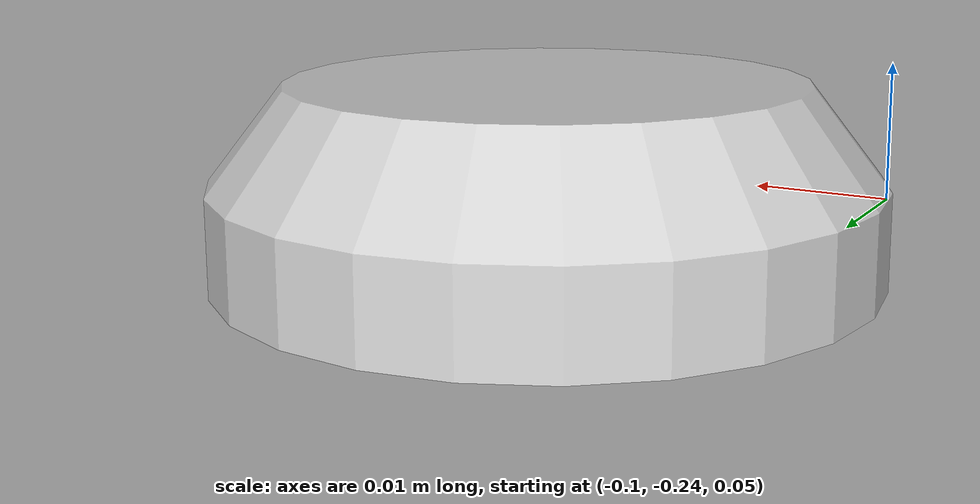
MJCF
<mujoco model="original-34">
  <default>
    <default class="visual">
      <geom group="2" type="mesh" contype="0" conaffinity="0"/>
    </default>
    <default class="collision">
      <geom group="3" type="mesh"/>
    </default>
  </default>
  <asset>
    <material name="material_0_0" specular="0.06666666666666667" shininess="0.03" rgba="0.8 0.8 0.8 1"/>
    <mesh file="original-34.obj"/>
  </asset>
  <worldbody>
    <body name="original-34">
      <geom material="material_0_0" mesh="original-34" class="visual"/>
      <geom mesh="original-34" class="collision"/>
    </body>
  </worldbody>
</mujoco>
